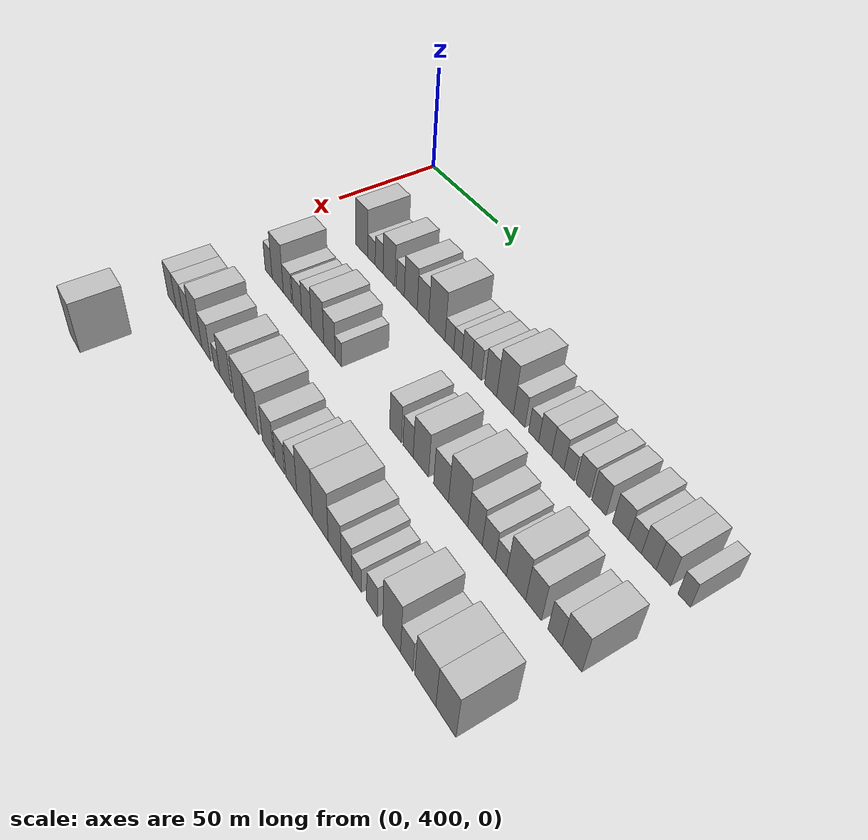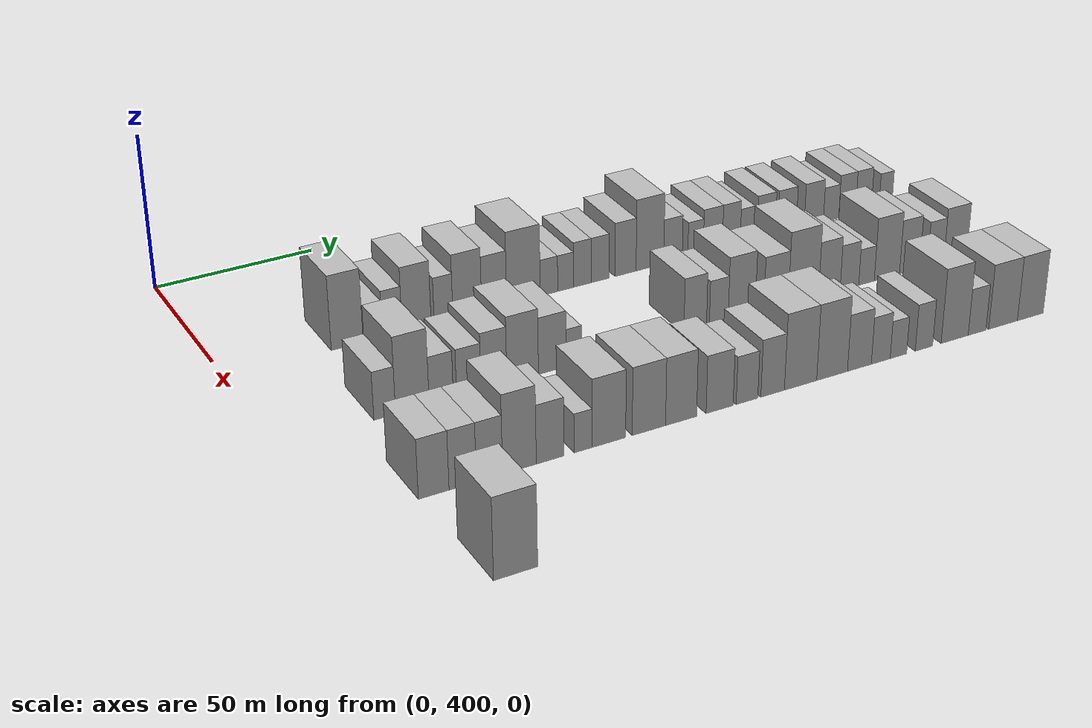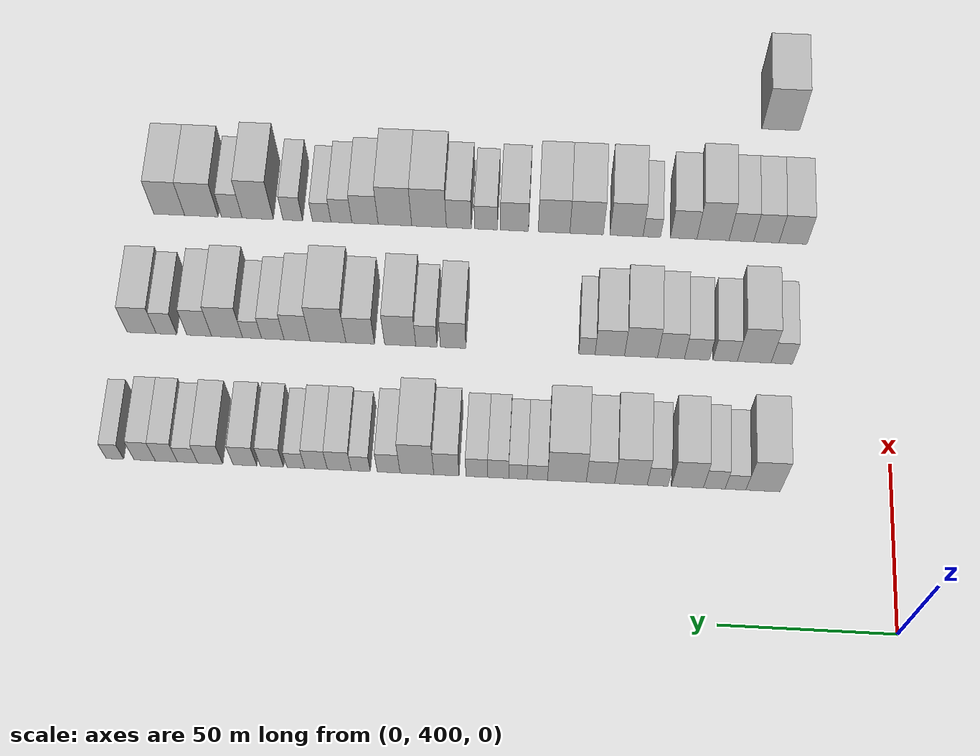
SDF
<sdf version="1.6">
 <world name="default">
  <model name="building_113">
   <static>1</static>
   <pose>50.0000 436.8785 0 0.000000 0.000000 0.000000</pose>
   <link name="link">
    <pose>0 0 12.00 0 0 0</pose>
    <collision name="collision"><geometry><box><size>20.0000 9.8470 24.0000</size></box></geometry></collision>
    <visual name="visual">
     <cast_shadows>0</cast_shadows>
     <geometry><box><size>20.0000 9.8470 24.0000</size></box></geometry>
     <material>
      <script>
       <uri>model://HANNAS_wall/materials/scripts</uri>
       <uri>model://HANNAS_wall/materials/textures</uri>
       <name>vrc/HANNAS_wall</name>
      </script>
     </material>
    </visual>
   </link>
  </model>
  <model name="building_114">
   <static>1</static>
   <pose>50.0000 444.7926 0 0.000000 0.000000 0.000000</pose>
   <link name="link">
    <pose>0 0 6.00 0 0 0</pose>
    <collision name="collision"><geometry><box><size>20.0000 5.9811 12.0000</size></box></geometry></collision>
    <visual name="visual">
     <cast_shadows>0</cast_shadows>
     <geometry><box><size>20.0000 5.9811 12.0000</size></box></geometry>
     <material>
      <script>
       <uri>model://HANNAS_wall/materials/scripts</uri>
       <uri>model://HANNAS_wall/materials/textures</uri>
       <name>vrc/HANNAS_wall</name>
      </script>
     </material>
    </visual>
   </link>
  </model>
  <model name="building_115">
   <static>1</static>
   <pose>50.0000 450.8944 0 0.000000 0.000000 0.000000</pose>
   <link name="link">
    <pose>0 0 7.50 0 0 0</pose>
    <collision name="collision"><geometry><box><size>20.0000 6.2225 15.0000</size></box></geometry></collision>
    <visual name="visual">
     <cast_shadows>0</cast_shadows>
     <geometry><box><size>20.0000 6.2225 15.0000</size></box></geometry>
     <material>
      <script>
       <uri>model://HANNAS_wall/materials/scripts</uri>
       <uri>model://HANNAS_wall/materials/textures</uri>
       <name>vrc/HANNAS_wall</name>
      </script>
     </material>
    </visual>
   </link>
  </model>
  <model name="building_116">
   <static>1</static>
   <pose>50.0000 458.5940 0 0.000000 0.000000 0.000000</pose>
   <link name="link">
    <pose>0 0 10.50 0 0 0</pose>
    <collision name="collision"><geometry><box><size>20.0000 9.1767 21.0000</size></box></geometry></collision>
    <visual name="visual">
     <cast_shadows>0</cast_shadows>
     <geometry><box><size>20.0000 9.1767 21.0000</size></box></geometry>
     <material>
      <script>
       <uri>model://HANNAS_wall/materials/scripts</uri>
       <uri>model://HANNAS_wall/materials/textures</uri>
       <name>vrc/HANNAS_wall</name>
      </script>
     </material>
    </visual>
   </link>
  </model>
  <model name="building_117">
   <static>1</static>
   <pose>50.0000 467.1879 0 0.000000 0.000000 0.000000</pose>
   <link name="link">
    <pose>0 0 7.50 0 0 0</pose>
    <collision name="collision"><geometry><box><size>20.0000 6.0111 15.0000</size></box></geometry></collision>
    <visual name="visual">
     <cast_shadows>0</cast_shadows>
     <geometry><box><size>20.0000 6.0111 15.0000</size></box></geometry>
     <material>
      <script>
       <uri>model://HANNAS_wall/materials/scripts</uri>
       <uri>model://HANNAS_wall/materials/textures</uri>
       <name>vrc/HANNAS_wall</name>
      </script>
     </material>
    </visual>
   </link>
  </model>
  <model name="building_118">
   <static>1</static>
   <pose>50.0000 474.8683 0 0.000000 0.000000 0.000000</pose>
   <link name="link">
    <pose>0 0 10.50 0 0 0</pose>
    <collision name="collision"><geometry><box><size>20.0000 9.3498 21.0000</size></box></geometry></collision>
    <visual name="visual">
     <cast_shadows>0</cast_shadows>
     <geometry><box><size>20.0000 9.3498 21.0000</size></box></geometry>
     <material>
      <script>
       <uri>model://HANNAS_wall/materials/scripts</uri>
       <uri>model://HANNAS_wall/materials/textures</uri>
       <name>vrc/HANNAS_wall</name>
      </script>
     </material>
    </visual>
   </link>
  </model>
  <model name="building_119">
   <static>1</static>
   <pose>50.0000 483.6323 0 0.000000 0.000000 0.000000</pose>
   <link name="link">
    <pose>0 0 9.00 0 0 0</pose>
    <collision name="collision"><geometry><box><size>20.0000 8.1782 18.0000</size></box></geometry></collision>
    <visual name="visual">
     <cast_shadows>0</cast_shadows>
     <geometry><box><size>20.0000 8.1782 18.0000</size></box></geometry>
     <material>
      <script>
       <uri>model://HANNAS_wall/materials/scripts</uri>
       <uri>model://HANNAS_wall/materials/textures</uri>
       <name>vrc/HANNAS_wall</name>
      </script>
     </material>
    </visual>
   </link>
  </model>
  <model name="building_120">
   <static>1</static>
   <pose>50.0000 493.3084 0 0.000000 0.000000 0.000000</pose>
   <link name="link">
    <pose>0 0 12.00 0 0 0</pose>
    <collision name="collision"><geometry><box><size>20.0000 11.1739 24.0000</size></box></geometry></collision>
    <visual name="visual">
     <cast_shadows>0</cast_shadows>
     <geometry><box><size>20.0000 11.1739 24.0000</size></box></geometry>
     <material>
      <script>
       <uri>model://HANNAS_wall/materials/scripts</uri>
       <uri>model://HANNAS_wall/materials/textures</uri>
       <name>vrc/HANNAS_wall</name>
      </script>
     </material>
    </visual>
   </link>
  </model>
  <model name="building_121">
   <static>1</static>
   <pose>50.0000 501.8334 0 0.000000 0.000000 0.000000</pose>
   <link name="link">
    <pose>0 0 6.00 0 0 0</pose>
    <collision name="collision"><geometry><box><size>20.0000 5.8761 12.0000</size></box></geometry></collision>
    <visual name="visual">
     <cast_shadows>0</cast_shadows>
     <geometry><box><size>20.0000 5.8761 12.0000</size></box></geometry>
     <material>
      <script>
       <uri>model://HANNAS_wall/materials/scripts</uri>
       <uri>model://HANNAS_wall/materials/textures</uri>
       <name>vrc/HANNAS_wall</name>
      </script>
     </material>
    </visual>
   </link>
  </model>
  <model name="building_122">
   <static>1</static>
   <pose>50.0000 507.4284 0 0.000000 0.000000 0.000000</pose>
   <link name="link">
    <pose>0 0 6.00 0 0 0</pose>
    <collision name="collision"><geometry><box><size>20.0000 5.3139 12.0000</size></box></geometry></collision>
    <visual name="visual">
     <cast_shadows>0</cast_shadows>
     <geometry><box><size>20.0000 5.3139 12.0000</size></box></geometry>
     <material>
      <script>
       <uri>model://HANNAS_wall/materials/scripts</uri>
       <uri>model://HANNAS_wall/materials/textures</uri>
       <name>vrc/HANNAS_wall</name>
      </script>
     </material>
    </visual>
   </link>
  </model>
  <model name="building_123">
   <static>1</static>
   <pose>50.0000 513.1007 0 0.000000 0.000000 0.000000</pose>
   <link name="link">
    <pose>0 0 7.50 0 0 0</pose>
    <collision name="collision"><geometry><box><size>20.0000 6.0308 15.0000</size></box></geometry></collision>
    <visual name="visual">
     <cast_shadows>0</cast_shadows>
     <geometry><box><size>20.0000 6.0308 15.0000</size></box></geometry>
     <material>
      <script>
       <uri>model://HANNAS_wall/materials/scripts</uri>
       <uri>model://HANNAS_wall/materials/textures</uri>
       <name>vrc/HANNAS_wall</name>
      </script>
     </material>
    </visual>
   </link>
  </model>
  <model name="building_124">
   <static>1</static>
   <pose>50.0000 519.2578 0 0.000000 0.000000 0.000000</pose>
   <link name="link">
    <pose>0 0 7.50 0 0 0</pose>
    <collision name="collision"><geometry><box><size>20.0000 6.2834 15.0000</size></box></geometry></collision>
    <visual name="visual">
     <cast_shadows>0</cast_shadows>
     <geometry><box><size>20.0000 6.2834 15.0000</size></box></geometry>
     <material>
      <script>
       <uri>model://HANNAS_wall/materials/scripts</uri>
       <uri>model://HANNAS_wall/materials/textures</uri>
       <name>vrc/HANNAS_wall</name>
      </script>
     </material>
    </visual>
   </link>
  </model>
  <model name="building_125">
   <static>1</static>
   <pose>50.0000 528.0510 0 0.000000 0.000000 0.000000</pose>
   <link name="link">
    <pose>0 0 9.00 0 0 0</pose>
    <collision name="collision"><geometry><box><size>20.0000 7.3029 18.0000</size></box></geometry></collision>
    <visual name="visual">
     <cast_shadows>0</cast_shadows>
     <geometry><box><size>20.0000 7.3029 18.0000</size></box></geometry>
     <material>
      <script>
       <uri>model://HANNAS_wall/materials/scripts</uri>
       <uri>model://HANNAS_wall/materials/textures</uri>
       <name>vrc/HANNAS_wall</name>
      </script>
     </material>
    </visual>
   </link>
  </model>
  <model name="building_126">
   <static>1</static>
   <pose>50.0000 536.5719 0 0.000000 0.000000 0.000000</pose>
   <link name="link">
    <pose>0 0 12.00 0 0 0</pose>
    <collision name="collision"><geometry><box><size>20.0000 9.7388 24.0000</size></box></geometry></collision>
    <visual name="visual">
     <cast_shadows>0</cast_shadows>
     <geometry><box><size>20.0000 9.7388 24.0000</size></box></geometry>
     <material>
      <script>
       <uri>model://HANNAS_wall/materials/scripts</uri>
       <uri>model://HANNAS_wall/materials/textures</uri>
       <name>vrc/HANNAS_wall</name>
      </script>
     </material>
    </visual>
   </link>
  </model>
  <model name="building_127">
   <static>1</static>
   <pose>50.0000 544.7334 0 0.000000 0.000000 0.000000</pose>
   <link name="link">
    <pose>0 0 7.50 0 0 0</pose>
    <collision name="collision"><geometry><box><size>20.0000 6.5842 15.0000</size></box></geometry></collision>
    <visual name="visual">
     <cast_shadows>0</cast_shadows>
     <geometry><box><size>20.0000 6.5842 15.0000</size></box></geometry>
     <material>
      <script>
       <uri>model://HANNAS_wall/materials/scripts</uri>
       <uri>model://HANNAS_wall/materials/textures</uri>
       <name>vrc/HANNAS_wall</name>
      </script>
     </material>
    </visual>
   </link>
  </model>
  <model name="building_128">
   <static>1</static>
   <pose>50.0000 552.7951 0 0.000000 0.000000 0.000000</pose>
   <link name="link">
    <pose>0 0 6.00 0 0 0</pose>
    <collision name="collision"><geometry><box><size>20.0000 5.5393 12.0000</size></box></geometry></collision>
    <visual name="visual">
     <cast_shadows>0</cast_shadows>
     <geometry><box><size>20.0000 5.5393 12.0000</size></box></geometry>
     <material>
      <script>
       <uri>model://HANNAS_wall/materials/scripts</uri>
       <uri>model://HANNAS_wall/materials/textures</uri>
       <name>vrc/HANNAS_wall</name>
      </script>
     </material>
    </visual>
   </link>
  </model>
  <model name="building_129">
   <static>1</static>
   <pose>50.0000 559.0308 0 0.000000 0.000000 0.000000</pose>
   <link name="link">
    <pose>0 0 7.50 0 0 0</pose>
    <collision name="collision"><geometry><box><size>20.0000 6.9321 15.0000</size></box></geometry></collision>
    <visual name="visual">
     <cast_shadows>0</cast_shadows>
     <geometry><box><size>20.0000 6.9321 15.0000</size></box></geometry>
     <material>
      <script>
       <uri>model://HANNAS_wall/materials/scripts</uri>
       <uri>model://HANNAS_wall/materials/textures</uri>
       <name>vrc/HANNAS_wall</name>
      </script>
     </material>
    </visual>
   </link>
  </model>
  <model name="building_130">
   <static>1</static>
   <pose>50.0000 565.7573 0 0.000000 0.000000 0.000000</pose>
   <link name="link">
    <pose>0 0 7.50 0 0 0</pose>
    <collision name="collision"><geometry><box><size>20.0000 6.5210 15.0000</size></box></geometry></collision>
    <visual name="visual">
     <cast_shadows>0</cast_shadows>
     <geometry><box><size>20.0000 6.5210 15.0000</size></box></geometry>
     <material>
      <script>
       <uri>model://HANNAS_wall/materials/scripts</uri>
       <uri>model://HANNAS_wall/materials/textures</uri>
       <name>vrc/HANNAS_wall</name>
      </script>
     </material>
    </visual>
   </link>
  </model>
  <model name="building_131">
   <static>1</static>
   <pose>50.0000 571.6080 0 0.000000 0.000000 0.000000</pose>
   <link name="link">
    <pose>0 0 6.00 0 0 0</pose>
    <collision name="collision"><geometry><box><size>20.0000 5.1803 12.0000</size></box></geometry></collision>
    <visual name="visual">
     <cast_shadows>0</cast_shadows>
     <geometry><box><size>20.0000 5.1803 12.0000</size></box></geometry>
     <material>
      <script>
       <uri>model://HANNAS_wall/materials/scripts</uri>
       <uri>model://HANNAS_wall/materials/textures</uri>
       <name>vrc/HANNAS_wall</name>
      </script>
     </material>
    </visual>
   </link>
  </model>
  <model name="building_132">
   <static>1</static>
   <pose>50.0000 578.5764 0 0.000000 0.000000 0.000000</pose>
   <link name="link">
    <pose>0 0 7.50 0 0 0</pose>
    <collision name="collision"><geometry><box><size>20.0000 6.7565 15.0000</size></box></geometry></collision>
    <visual name="visual">
     <cast_shadows>0</cast_shadows>
     <geometry><box><size>20.0000 6.7565 15.0000</size></box></geometry>
     <material>
      <script>
       <uri>model://HANNAS_wall/materials/scripts</uri>
       <uri>model://HANNAS_wall/materials/textures</uri>
       <name>vrc/HANNAS_wall</name>
      </script>
     </material>
    </visual>
   </link>
  </model>
  <model name="building_133">
   <static>1</static>
   <pose>50.0000 586.4103 0 0.000000 0.000000 0.000000</pose>
   <link name="link">
    <pose>0 0 7.50 0 0 0</pose>
    <collision name="collision"><geometry><box><size>20.0000 6.9113 15.0000</size></box></geometry></collision>
    <visual name="visual">
     <cast_shadows>0</cast_shadows>
     <geometry><box><size>20.0000 6.9113 15.0000</size></box></geometry>
     <material>
      <script>
       <uri>model://HANNAS_wall/materials/scripts</uri>
       <uri>model://HANNAS_wall/materials/textures</uri>
       <name>vrc/HANNAS_wall</name>
      </script>
     </material>
    </visual>
   </link>
  </model>
  <model name="building_134">
   <static>1</static>
   <pose>50.0000 596.5261 0 0.000000 0.000000 0.000000</pose>
   <link name="link">
    <pose>0 0 7.50 0 0 0</pose>
    <collision name="collision"><geometry><box><size>20.0000 7.3204 15.0000</size></box></geometry></collision>
    <visual name="visual">
     <cast_shadows>0</cast_shadows>
     <geometry><box><size>20.0000 7.3204 15.0000</size></box></geometry>
     <material>
      <script>
       <uri>model://HANNAS_wall/materials/scripts</uri>
       <uri>model://HANNAS_wall/materials/textures</uri>
       <name>vrc/HANNAS_wall</name>
      </script>
     </material>
    </visual>
   </link>
  </model>
  <model name="building_135">
   <static>1</static>
   <pose>50.0000 603.1235 0 0.000000 0.000000 0.000000</pose>
   <link name="link">
    <pose>0 0 6.00 0 0 0</pose>
    <collision name="collision"><geometry><box><size>20.0000 5.8744 12.0000</size></box></geometry></collision>
    <visual name="visual">
     <cast_shadows>0</cast_shadows>
     <geometry><box><size>20.0000 5.8744 12.0000</size></box></geometry>
     <material>
      <script>
       <uri>model://HANNAS_wall/materials/scripts</uri>
       <uri>model://HANNAS_wall/materials/textures</uri>
       <name>vrc/HANNAS_wall</name>
      </script>
     </material>
    </visual>
   </link>
  </model>
  <model name="building_136">
   <static>1</static>
   <pose>50.0000 609.2838 0 0.000000 0.000000 0.000000</pose>
   <link name="link">
    <pose>0 0 7.50 0 0 0</pose>
    <collision name="collision"><geometry><box><size>20.0000 6.4463 15.0000</size></box></geometry></collision>
    <visual name="visual">
     <cast_shadows>0</cast_shadows>
     <geometry><box><size>20.0000 6.4463 15.0000</size></box></geometry>
     <material>
      <script>
       <uri>model://HANNAS_wall/materials/scripts</uri>
       <uri>model://HANNAS_wall/materials/textures</uri>
       <name>vrc/HANNAS_wall</name>
      </script>
     </material>
    </visual>
   </link>
  </model>
  <model name="building_137">
   <static>1</static>
   <pose>50.0000 615.5949 0 0.000000 0.000000 0.000000</pose>
   <link name="link">
    <pose>0 0 7.50 0 0 0</pose>
    <collision name="collision"><geometry><box><size>20.0000 6.1759 15.0000</size></box></geometry></collision>
    <visual name="visual">
     <cast_shadows>0</cast_shadows>
     <geometry><box><size>20.0000 6.1759 15.0000</size></box></geometry>
     <material>
      <script>
       <uri>model://HANNAS_wall/materials/scripts</uri>
       <uri>model://HANNAS_wall/materials/textures</uri>
       <name>vrc/HANNAS_wall</name>
      </script>
     </material>
    </visual>
   </link>
  </model>
  <model name="building_138">
   <static>1</static>
   <pose>50.0000 624.2510 0 0.000000 0.000000 0.000000</pose>
   <link name="link">
    <pose>0 0 6.00 0 0 0</pose>
    <collision name="collision"><geometry><box><size>20.0000 5.1363 12.0000</size></box></geometry></collision>
    <visual name="visual">
     <cast_shadows>0</cast_shadows>
     <geometry><box><size>20.0000 5.1363 12.0000</size></box></geometry>
     <material>
      <script>
       <uri>model://HANNAS_wall/materials/scripts</uri>
       <uri>model://HANNAS_wall/materials/textures</uri>
       <name>vrc/HANNAS_wall</name>
      </script>
     </material>
    </visual>
   </link>
  </model>
  <model name="building_253">
   <static>1</static>
   <pose>90.0000 430.9572 0 0.000000 0.000000 0.000000</pose>
   <link name="link">
    <pose>0 0 7.50 0 0 0</pose>
    <collision name="collision"><geometry><box><size>20.0000 6.3810 15.0000</size></box></geometry></collision>
    <visual name="visual">
     <cast_shadows>0</cast_shadows>
     <geometry><box><size>20.0000 6.3810 15.0000</size></box></geometry>
     <material>
      <script>
       <uri>model://HANNAS_wall/materials/scripts</uri>
       <uri>model://HANNAS_wall/materials/textures</uri>
       <name>vrc/HANNAS_wall</name>
      </script>
     </material>
    </visual>
   </link>
  </model>
  <model name="building_254">
   <static>1</static>
   <pose>90.0000 439.1356 0 0.000000 0.000000 0.000000</pose>
   <link name="link">
    <pose>0 0 12.00 0 0 0</pose>
    <collision name="collision"><geometry><box><size>20.0000 9.9757 24.0000</size></box></geometry></collision>
    <visual name="visual">
     <cast_shadows>0</cast_shadows>
     <geometry><box><size>20.0000 9.9757 24.0000</size></box></geometry>
     <material>
      <script>
       <uri>model://HANNAS_wall/materials/scripts</uri>
       <uri>model://HANNAS_wall/materials/textures</uri>
       <name>vrc/HANNAS_wall</name>
      </script>
     </material>
    </visual>
   </link>
  </model>
  <model name="building_255">
   <static>1</static>
   <pose>90.0000 447.7504 0 0.000000 0.000000 0.000000</pose>
   <link name="link">
    <pose>0 0 7.50 0 0 0</pose>
    <collision name="collision"><geometry><box><size>20.0000 7.2540 15.0000</size></box></geometry></collision>
    <visual name="visual">
     <cast_shadows>0</cast_shadows>
     <geometry><box><size>20.0000 7.2540 15.0000</size></box></geometry>
     <material>
      <script>
       <uri>model://HANNAS_wall/materials/scripts</uri>
       <uri>model://HANNAS_wall/materials/textures</uri>
       <name>vrc/HANNAS_wall</name>
      </script>
     </material>
    </visual>
   </link>
  </model>
  <model name="building_256">
   <static>1</static>
   <pose>90.0000 456.0979 0 0.000000 0.000000 0.000000</pose>
   <link name="link">
    <pose>0 0 7.50 0 0 0</pose>
    <collision name="collision"><geometry><box><size>20.0000 7.4410 15.0000</size></box></geometry></collision>
    <visual name="visual">
     <cast_shadows>0</cast_shadows>
     <geometry><box><size>20.0000 7.4410 15.0000</size></box></geometry>
     <material>
      <script>
       <uri>model://HANNAS_wall/materials/scripts</uri>
       <uri>model://HANNAS_wall/materials/textures</uri>
       <name>vrc/HANNAS_wall</name>
      </script>
     </material>
    </visual>
   </link>
  </model>
  <model name="building_257">
   <static>1</static>
   <pose>90.0000 463.7960 0 0.000000 0.000000 0.000000</pose>
   <link name="link">
    <pose>0 0 9.00 0 0 0</pose>
    <collision name="collision"><geometry><box><size>20.0000 7.9552 18.0000</size></box></geometry></collision>
    <visual name="visual">
     <cast_shadows>0</cast_shadows>
     <geometry><box><size>20.0000 7.9552 18.0000</size></box></geometry>
     <material>
      <script>
       <uri>model://HANNAS_wall/materials/scripts</uri>
       <uri>model://HANNAS_wall/materials/textures</uri>
       <name>vrc/HANNAS_wall</name>
      </script>
     </material>
    </visual>
   </link>
  </model>
  <model name="building_258">
   <static>1</static>
   <pose>90.0000 472.6926 0 0.000000 0.000000 0.000000</pose>
   <link name="link">
    <pose>0 0 10.50 0 0 0</pose>
    <collision name="collision"><geometry><box><size>20.0000 9.8380 21.0000</size></box></geometry></collision>
    <visual name="visual">
     <cast_shadows>0</cast_shadows>
     <geometry><box><size>20.0000 9.8380 21.0000</size></box></geometry>
     <material>
      <script>
       <uri>model://HANNAS_wall/materials/scripts</uri>
       <uri>model://HANNAS_wall/materials/textures</uri>
       <name>vrc/HANNAS_wall</name>
      </script>
     </material>
    </visual>
   </link>
  </model>
  <model name="building_259">
   <static>1</static>
   <pose>90.0000 481.9877 0 0.000000 0.000000 0.000000</pose>
   <link name="link">
    <pose>0 0 9.00 0 0 0</pose>
    <collision name="collision"><geometry><box><size>20.0000 8.7523 18.0000</size></box></geometry></collision>
    <visual name="visual">
     <cast_shadows>0</cast_shadows>
     <geometry><box><size>20.0000 8.7523 18.0000</size></box></geometry>
     <material>
      <script>
       <uri>model://HANNAS_wall/materials/scripts</uri>
       <uri>model://HANNAS_wall/materials/textures</uri>
       <name>vrc/HANNAS_wall</name>
      </script>
     </material>
    </visual>
   </link>
  </model>
  <model name="building_260">
   <static>1</static>
   <pose>90.0000 488.7991 0 0.000000 0.000000 0.000000</pose>
   <link name="link">
    <pose>0 0 6.00 0 0 0</pose>
    <collision name="collision"><geometry><box><size>20.0000 4.8704 12.0000</size></box></geometry></collision>
    <visual name="visual">
     <cast_shadows>0</cast_shadows>
     <geometry><box><size>20.0000 4.8704 12.0000</size></box></geometry>
     <material>
      <script>
       <uri>model://HANNAS_wall/materials/scripts</uri>
       <uri>model://HANNAS_wall/materials/textures</uri>
       <name>vrc/HANNAS_wall</name>
      </script>
     </material>
    </visual>
   </link>
  </model>
  <model name="building_261">
   <static>1</static>
   <pose>90.0000 528.6045 0 0.000000 0.000000 0.000000</pose>
   <link name="link">
    <pose>0 0 9.00 0 0 0</pose>
    <collision name="collision"><geometry><box><size>20.0000 7.5801 18.0000</size></box></geometry></collision>
    <visual name="visual">
     <cast_shadows>0</cast_shadows>
     <geometry><box><size>20.0000 7.5801 18.0000</size></box></geometry>
     <material>
      <script>
       <uri>model://HANNAS_wall/materials/scripts</uri>
       <uri>model://HANNAS_wall/materials/textures</uri>
       <name>vrc/HANNAS_wall</name>
      </script>
     </material>
    </visual>
   </link>
  </model>
  <model name="building_262">
   <static>1</static>
   <pose>90.0000 536.5821 0 0.000000 0.000000 0.000000</pose>
   <link name="link">
    <pose>0 0 7.50 0 0 0</pose>
    <collision name="collision"><geometry><box><size>20.0000 6.3751 15.0000</size></box></geometry></collision>
    <visual name="visual">
     <cast_shadows>0</cast_shadows>
     <geometry><box><size>20.0000 6.3751 15.0000</size></box></geometry>
     <material>
      <script>
       <uri>model://HANNAS_wall/materials/scripts</uri>
       <uri>model://HANNAS_wall/materials/textures</uri>
       <name>vrc/HANNAS_wall</name>
      </script>
     </material>
    </visual>
   </link>
  </model>
  <model name="building_263">
   <static>1</static>
   <pose>90.0000 544.4234 0 0.000000 0.000000 0.000000</pose>
   <link name="link">
    <pose>0 0 10.50 0 0 0</pose>
    <collision name="collision"><geometry><box><size>20.0000 9.3075 21.0000</size></box></geometry></collision>
    <visual name="visual">
     <cast_shadows>0</cast_shadows>
     <geometry><box><size>20.0000 9.3075 21.0000</size></box></geometry>
     <material>
      <script>
       <uri>model://HANNAS_wall/materials/scripts</uri>
       <uri>model://HANNAS_wall/materials/textures</uri>
       <name>vrc/HANNAS_wall</name>
      </script>
     </material>
    </visual>
   </link>
  </model>
  <model name="building_264">
   <static>1</static>
   <pose>90.0000 556.3689 0 0.000000 0.000000 0.000000</pose>
   <link name="link">
    <pose>0 0 9.00 0 0 0</pose>
    <collision name="collision"><geometry><box><size>20.0000 8.5836 18.0000</size></box></geometry></collision>
    <visual name="visual">
     <cast_shadows>0</cast_shadows>
     <geometry><box><size>20.0000 8.5836 18.0000</size></box></geometry>
     <material>
      <script>
       <uri>model://HANNAS_wall/materials/scripts</uri>
       <uri>model://HANNAS_wall/materials/textures</uri>
       <name>vrc/HANNAS_wall</name>
      </script>
     </material>
    </visual>
   </link>
  </model>
  <model name="building_265">
   <static>1</static>
   <pose>90.0000 566.0372 0 0.000000 0.000000 0.000000</pose>
   <link name="link">
    <pose>0 0 12.00 0 0 0</pose>
    <collision name="collision"><geometry><box><size>20.0000 10.7529 24.0000</size></box></geometry></collision>
    <visual name="visual">
     <cast_shadows>0</cast_shadows>
     <geometry><box><size>20.0000 10.7529 24.0000</size></box></geometry>
     <material>
      <script>
       <uri>model://HANNAS_wall/materials/scripts</uri>
       <uri>model://HANNAS_wall/materials/textures</uri>
       <name>vrc/HANNAS_wall</name>
      </script>
     </material>
    </visual>
   </link>
  </model>
  <model name="building_266">
   <static>1</static>
   <pose>90.0000 575.2850 0 0.000000 0.000000 0.000000</pose>
   <link name="link">
    <pose>0 0 9.00 0 0 0</pose>
    <collision name="collision"><geometry><box><size>20.0000 7.7428 18.0000</size></box></geometry></collision>
    <visual name="visual">
     <cast_shadows>0</cast_shadows>
     <geometry><box><size>20.0000 7.7428 18.0000</size></box></geometry>
     <material>
      <script>
       <uri>model://HANNAS_wall/materials/scripts</uri>
       <uri>model://HANNAS_wall/materials/textures</uri>
       <name>vrc/HANNAS_wall</name>
      </script>
     </material>
    </visual>
   </link>
  </model>
  <model name="building_267">
   <static>1</static>
   <pose>90.0000 582.5317 0 0.000000 0.000000 0.000000</pose>
   <link name="link">
    <pose>0 0 7.50 0 0 0</pose>
    <collision name="collision"><geometry><box><size>20.0000 6.7506 15.0000</size></box></geometry></collision>
    <visual name="visual">
     <cast_shadows>0</cast_shadows>
     <geometry><box><size>20.0000 6.7506 15.0000</size></box></geometry>
     <material>
      <script>
       <uri>model://HANNAS_wall/materials/scripts</uri>
       <uri>model://HANNAS_wall/materials/textures</uri>
       <name>vrc/HANNAS_wall</name>
      </script>
     </material>
    </visual>
   </link>
  </model>
  <model name="building_268">
   <static>1</static>
   <pose>90.0000 588.7497 0 0.000000 0.000000 0.000000</pose>
   <link name="link">
    <pose>0 0 6.00 0 0 0</pose>
    <collision name="collision"><geometry><box><size>20.0000 5.6855 12.0000</size></box></geometry></collision>
    <visual name="visual">
     <cast_shadows>0</cast_shadows>
     <geometry><box><size>20.0000 5.6855 12.0000</size></box></geometry>
     <material>
      <script>
       <uri>model://HANNAS_wall/materials/scripts</uri>
       <uri>model://HANNAS_wall/materials/textures</uri>
       <name>vrc/HANNAS_wall</name>
      </script>
     </material>
    </visual>
   </link>
  </model>
  <model name="building_269">
   <static>1</static>
   <pose>90.0000 596.2501 0 0.000000 0.000000 0.000000</pose>
   <link name="link">
    <pose>0 0 10.50 0 0 0</pose>
    <collision name="collision"><geometry><box><size>20.0000 9.3152 21.0000</size></box></geometry></collision>
    <visual name="visual">
     <cast_shadows>0</cast_shadows>
     <geometry><box><size>20.0000 9.3152 21.0000</size></box></geometry>
     <material>
      <script>
       <uri>model://HANNAS_wall/materials/scripts</uri>
       <uri>model://HANNAS_wall/materials/textures</uri>
       <name>vrc/HANNAS_wall</name>
      </script>
     </material>
    </visual>
   </link>
  </model>
  <model name="building_270">
   <static>1</static>
   <pose>90.0000 604.6306 0 0.000000 0.000000 0.000000</pose>
   <link name="link">
    <pose>0 0 9.00 0 0 0</pose>
    <collision name="collision"><geometry><box><size>20.0000 7.4460 18.0000</size></box></geometry></collision>
    <visual name="visual">
     <cast_shadows>0</cast_shadows>
     <geometry><box><size>20.0000 7.4460 18.0000</size></box></geometry>
     <material>
      <script>
       <uri>model://HANNAS_wall/materials/scripts</uri>
       <uri>model://HANNAS_wall/materials/textures</uri>
       <name>vrc/HANNAS_wall</name>
      </script>
     </material>
    </visual>
   </link>
  </model>
  <model name="building_271">
   <static>1</static>
   <pose>90.0000 614.4553 0 0.000000 0.000000 0.000000</pose>
   <link name="link">
    <pose>0 0 7.50 0 0 0</pose>
    <collision name="collision"><geometry><box><size>20.0000 6.2034 15.0000</size></box></geometry></collision>
    <visual name="visual">
     <cast_shadows>0</cast_shadows>
     <geometry><box><size>20.0000 6.2034 15.0000</size></box></geometry>
     <material>
      <script>
       <uri>model://HANNAS_wall/materials/scripts</uri>
       <uri>model://HANNAS_wall/materials/textures</uri>
       <name>vrc/HANNAS_wall</name>
      </script>
     </material>
    </visual>
   </link>
  </model>
  <model name="building_272">
   <static>1</static>
   <pose>90.0000 621.9286 0 0.000000 0.000000 0.000000</pose>
   <link name="link">
    <pose>0 0 9.00 0 0 0</pose>
    <collision name="collision"><geometry><box><size>20.0000 8.7432 18.0000</size></box></geometry></collision>
    <visual name="visual">
     <cast_shadows>0</cast_shadows>
     <geometry><box><size>20.0000 8.7432 18.0000</size></box></geometry>
     <material>
      <script>
       <uri>model://HANNAS_wall/materials/scripts</uri>
       <uri>model://HANNAS_wall/materials/textures</uri>
       <name>vrc/HANNAS_wall</name>
      </script>
     </material>
    </visual>
   </link>
  </model>
  <model name="building_392">
   <static>1</static>
   <pose>130.0000 426.9467 0 0.000000 0.000000 0.000000</pose>
   <link name="link">
    <pose>0 0 9.00 0 0 0</pose>
    <collision name="collision"><geometry><box><size>20.0000 8.5976 18.0000</size></box></geometry></collision>
    <visual name="visual">
     <cast_shadows>0</cast_shadows>
     <geometry><box><size>20.0000 8.5976 18.0000</size></box></geometry>
     <material>
      <script>
       <uri>model://HANNAS_wall/materials/scripts</uri>
       <uri>model://HANNAS_wall/materials/textures</uri>
       <name>vrc/HANNAS_wall</name>
      </script>
     </material>
    </visual>
   </link>
  </model>
  <model name="building_393">
   <static>1</static>
   <pose>130.0000 435.1160 0 0.000000 0.000000 0.000000</pose>
   <link name="link">
    <pose>0 0 9.00 0 0 0</pose>
    <collision name="collision"><geometry><box><size>20.0000 7.7410 18.0000</size></box></geometry></collision>
    <visual name="visual">
     <cast_shadows>0</cast_shadows>
     <geometry><box><size>20.0000 7.7410 18.0000</size></box></geometry>
     <material>
      <script>
       <uri>model://HANNAS_wall/materials/scripts</uri>
       <uri>model://HANNAS_wall/materials/textures</uri>
       <name>vrc/HANNAS_wall</name>
      </script>
     </material>
    </visual>
   </link>
  </model>
  <model name="building_394">
   <static>1</static>
   <pose>130.0000 442.7504 0 0.000000 0.000000 0.000000</pose>
   <link name="link">
    <pose>0 0 9.00 0 0 0</pose>
    <collision name="collision"><geometry><box><size>20.0000 7.5277 18.0000</size></box></geometry></collision>
    <visual name="visual">
     <cast_shadows>0</cast_shadows>
     <geometry><box><size>20.0000 7.5277 18.0000</size></box></geometry>
     <material>
      <script>
       <uri>model://HANNAS_wall/materials/scripts</uri>
       <uri>model://HANNAS_wall/materials/textures</uri>
       <name>vrc/HANNAS_wall</name>
      </script>
     </material>
    </visual>
   </link>
  </model>
  <model name="building_395">
   <static>1</static>
   <pose>130.0000 451.4079 0 0.000000 0.000000 0.000000</pose>
   <link name="link">
    <pose>0 0 12.00 0 0 0</pose>
    <collision name="collision"><geometry><box><size>20.0000 9.7873 24.0000</size></box></geometry></collision>
    <visual name="visual">
     <cast_shadows>0</cast_shadows>
     <geometry><box><size>20.0000 9.7873 24.0000</size></box></geometry>
     <material>
      <script>
       <uri>model://HANNAS_wall/materials/scripts</uri>
       <uri>model://HANNAS_wall/materials/textures</uri>
       <name>vrc/HANNAS_wall</name>
      </script>
     </material>
    </visual>
   </link>
  </model>
  <model name="building_396">
   <static>1</static>
   <pose>130.0000 460.3738 0 0.000000 0.000000 0.000000</pose>
   <link name="link">
    <pose>0 0 9.00 0 0 0</pose>
    <collision name="collision"><geometry><box><size>20.0000 8.1445 18.0000</size></box></geometry></collision>
    <visual name="visual">
     <cast_shadows>0</cast_shadows>
     <geometry><box><size>20.0000 8.1445 18.0000</size></box></geometry>
     <material>
      <script>
       <uri>model://HANNAS_wall/materials/scripts</uri>
       <uri>model://HANNAS_wall/materials/textures</uri>
       <name>vrc/HANNAS_wall</name>
      </script>
     </material>
    </visual>
   </link>
  </model>
  <model name="building_397">
   <static>1</static>
   <pose>130.0000 470.1311 0 0.000000 0.000000 0.000000</pose>
   <link name="link">
    <pose>0 0 6.00 0 0 0</pose>
    <collision name="collision"><geometry><box><size>20.0000 5.3700 12.0000</size></box></geometry></collision>
    <visual name="visual">
     <cast_shadows>0</cast_shadows>
     <geometry><box><size>20.0000 5.3700 12.0000</size></box></geometry>
     <material>
      <script>
       <uri>model://HANNAS_wall/materials/scripts</uri>
       <uri>model://HANNAS_wall/materials/textures</uri>
       <name>vrc/HANNAS_wall</name>
      </script>
     </material>
    </visual>
   </link>
  </model>
  <model name="building_398">
   <static>1</static>
   <pose>130.0000 477.9075 0 0.000000 0.000000 0.000000</pose>
   <link name="link">
    <pose>0 0 10.50 0 0 0</pose>
    <collision name="collision"><geometry><box><size>20.0000 10.1829 21.0000</size></box></geometry></collision>
    <visual name="visual">
     <cast_shadows>0</cast_shadows>
     <geometry><box><size>20.0000 10.1829 21.0000</size></box></geometry>
     <material>
      <script>
       <uri>model://HANNAS_wall/materials/scripts</uri>
       <uri>model://HANNAS_wall/materials/textures</uri>
       <name>vrc/HANNAS_wall</name>
      </script>
     </material>
    </visual>
   </link>
  </model>
  <model name="building_399">
   <static>1</static>
   <pose>130.0000 490.1350 0 0.000000 0.000000 0.000000</pose>
   <link name="link">
    <pose>0 0 10.50 0 0 0</pose>
    <collision name="collision"><geometry><box><size>20.0000 10.2721 21.0000</size></box></geometry></collision>
    <visual name="visual">
     <cast_shadows>0</cast_shadows>
     <geometry><box><size>20.0000 10.2721 21.0000</size></box></geometry>
     <material>
      <script>
       <uri>model://HANNAS_wall/materials/scripts</uri>
       <uri>model://HANNAS_wall/materials/textures</uri>
       <name>vrc/HANNAS_wall</name>
      </script>
     </material>
    </visual>
   </link>
  </model>
  <model name="building_400">
   <static>1</static>
   <pose>130.0000 500.1175 0 0.000000 0.000000 0.000000</pose>
   <link name="link">
    <pose>0 0 10.50 0 0 0</pose>
    <collision name="collision"><geometry><box><size>20.0000 9.6928 21.0000</size></box></geometry></collision>
    <visual name="visual">
     <cast_shadows>0</cast_shadows>
     <geometry><box><size>20.0000 9.6928 21.0000</size></box></geometry>
     <material>
      <script>
       <uri>model://HANNAS_wall/materials/scripts</uri>
       <uri>model://HANNAS_wall/materials/textures</uri>
       <name>vrc/HANNAS_wall</name>
      </script>
     </material>
    </visual>
   </link>
  </model>
  <model name="building_401">
   <static>1</static>
   <pose>130.0000 512.2630 0 0.000000 0.000000 0.000000</pose>
   <link name="link">
    <pose>0 0 9.00 0 0 0</pose>
    <collision name="collision"><geometry><box><size>20.0000 8.5983 18.0000</size></box></geometry></collision>
    <visual name="visual">
     <cast_shadows>0</cast_shadows>
     <geometry><box><size>20.0000 8.5983 18.0000</size></box></geometry>
     <material>
      <script>
       <uri>model://HANNAS_wall/materials/scripts</uri>
       <uri>model://HANNAS_wall/materials/textures</uri>
       <name>vrc/HANNAS_wall</name>
      </script>
     </material>
    </visual>
   </link>
  </model>
  <model name="building_402">
   <static>1</static>
   <pose>130.0000 521.0368 0 0.000000 0.000000 0.000000</pose>
   <link name="link">
    <pose>0 0 7.50 0 0 0</pose>
    <collision name="collision"><geometry><box><size>20.0000 6.9493 15.0000</size></box></geometry></collision>
    <visual name="visual">
     <cast_shadows>0</cast_shadows>
     <geometry><box><size>20.0000 6.9493 15.0000</size></box></geometry>
     <material>
      <script>
       <uri>model://HANNAS_wall/materials/scripts</uri>
       <uri>model://HANNAS_wall/materials/textures</uri>
       <name>vrc/HANNAS_wall</name>
      </script>
     </material>
    </visual>
   </link>
  </model>
  <model name="building_403">
   <static>1</static>
   <pose>130.0000 529.3599 0 0.000000 0.000000 0.000000</pose>
   <link name="link">
    <pose>0 0 9.00 0 0 0</pose>
    <collision name="collision"><geometry><box><size>20.0000 7.6968 18.0000</size></box></geometry></collision>
    <visual name="visual">
     <cast_shadows>0</cast_shadows>
     <geometry><box><size>20.0000 7.6968 18.0000</size></box></geometry>
     <material>
      <script>
       <uri>model://HANNAS_wall/materials/scripts</uri>
       <uri>model://HANNAS_wall/materials/textures</uri>
       <name>vrc/HANNAS_wall</name>
      </script>
     </material>
    </visual>
   </link>
  </model>
  <model name="building_404">
   <static>1</static>
   <pose>130.0000 538.5388 0 0.000000 0.000000 0.000000</pose>
   <link name="link">
    <pose>0 0 12.00 0 0 0</pose>
    <collision name="collision"><geometry><box><size>20.0000 10.6611 24.0000</size></box></geometry></collision>
    <visual name="visual">
     <cast_shadows>0</cast_shadows>
     <geometry><box><size>20.0000 10.6611 24.0000</size></box></geometry>
     <material>
      <script>
       <uri>model://HANNAS_wall/materials/scripts</uri>
       <uri>model://HANNAS_wall/materials/textures</uri>
       <name>vrc/HANNAS_wall</name>
      </script>
     </material>
    </visual>
   </link>
  </model>
  <model name="building_405">
   <static>1</static>
   <pose>130.0000 549.0339 0 0.000000 0.000000 0.000000</pose>
   <link name="link">
    <pose>0 0 12.00 0 0 0</pose>
    <collision name="collision"><geometry><box><size>20.0000 10.3292 24.0000</size></box></geometry></collision>
    <visual name="visual">
     <cast_shadows>0</cast_shadows>
     <geometry><box><size>20.0000 10.3292 24.0000</size></box></geometry>
     <material>
      <script>
       <uri>model://HANNAS_wall/materials/scripts</uri>
       <uri>model://HANNAS_wall/materials/textures</uri>
       <name>vrc/HANNAS_wall</name>
      </script>
     </material>
    </visual>
   </link>
  </model>
  <model name="building_406">
   <static>1</static>
   <pose>130.0000 558.2556 0 0.000000 0.000000 0.000000</pose>
   <link name="link">
    <pose>0 0 9.00 0 0 0</pose>
    <collision name="collision"><geometry><box><size>20.0000 8.1141 18.0000</size></box></geometry></collision>
    <visual name="visual">
     <cast_shadows>0</cast_shadows>
     <geometry><box><size>20.0000 8.1141 18.0000</size></box></geometry>
     <material>
      <script>
       <uri>model://HANNAS_wall/materials/scripts</uri>
       <uri>model://HANNAS_wall/materials/textures</uri>
       <name>vrc/HANNAS_wall</name>
      </script>
     </material>
    </visual>
   </link>
  </model>
  <model name="building_407">
   <static>1</static>
   <pose>130.0000 565.5516 0 0.000000 0.000000 0.000000</pose>
   <link name="link">
    <pose>0 0 7.50 0 0 0</pose>
    <collision name="collision"><geometry><box><size>20.0000 6.4780 15.0000</size></box></geometry></collision>
    <visual name="visual">
     <cast_shadows>0</cast_shadows>
     <geometry><box><size>20.0000 6.4780 15.0000</size></box></geometry>
     <material>
      <script>
       <uri>model://HANNAS_wall/materials/scripts</uri>
       <uri>model://HANNAS_wall/materials/textures</uri>
       <name>vrc/HANNAS_wall</name>
      </script>
     </material>
    </visual>
   </link>
  </model>
  <model name="building_408">
   <static>1</static>
   <pose>130.0000 571.6504 0 0.000000 0.000000 0.000000</pose>
   <link name="link">
    <pose>0 0 6.00 0 0 0</pose>
    <collision name="collision"><geometry><box><size>20.0000 5.7195 12.0000</size></box></geometry></collision>
    <visual name="visual">
     <cast_shadows>0</cast_shadows>
     <geometry><box><size>20.0000 5.7195 12.0000</size></box></geometry>
     <material>
      <script>
       <uri>model://HANNAS_wall/materials/scripts</uri>
       <uri>model://HANNAS_wall/materials/textures</uri>
       <name>vrc/HANNAS_wall</name>
      </script>
     </material>
    </visual>
   </link>
  </model>
  <model name="building_409">
   <static>1</static>
   <pose>130.0000 580.5504 0 0.000000 0.000000 0.000000</pose>
   <link name="link">
    <pose>0 0 7.50 0 0 0</pose>
    <collision name="collision"><geometry><box><size>20.0000 6.0806 15.0000</size></box></geometry></collision>
    <visual name="visual">
     <cast_shadows>0</cast_shadows>
     <geometry><box><size>20.0000 6.0806 15.0000</size></box></geometry>
     <material>
      <script>
       <uri>model://HANNAS_wall/materials/scripts</uri>
       <uri>model://HANNAS_wall/materials/textures</uri>
       <name>vrc/HANNAS_wall</name>
      </script>
     </material>
    </visual>
   </link>
  </model>
  <model name="building_410">
   <static>1</static>
   <pose>130.0000 591.4172 0 0.000000 0.000000 0.000000</pose>
   <link name="link">
    <pose>0 0 12.00 0 0 0</pose>
    <collision name="collision"><geometry><box><size>20.0000 9.6530 24.0000</size></box></geometry></collision>
    <visual name="visual">
     <cast_shadows>0</cast_shadows>
     <geometry><box><size>20.0000 9.6530 24.0000</size></box></geometry>
     <material>
      <script>
       <uri>model://HANNAS_wall/materials/scripts</uri>
       <uri>model://HANNAS_wall/materials/textures</uri>
       <name>vrc/HANNAS_wall</name>
      </script>
     </material>
    </visual>
   </link>
  </model>
  <model name="building_411">
   <static>1</static>
   <pose>130.0000 599.4418 0 0.000000 0.000000 0.000000</pose>
   <link name="link">
    <pose>0 0 7.50 0 0 0</pose>
    <collision name="collision"><geometry><box><size>20.0000 6.3962 15.0000</size></box></geometry></collision>
    <visual name="visual">
     <cast_shadows>0</cast_shadows>
     <geometry><box><size>20.0000 6.3962 15.0000</size></box></geometry>
     <material>
      <script>
       <uri>model://HANNAS_wall/materials/scripts</uri>
       <uri>model://HANNAS_wall/materials/textures</uri>
       <name>vrc/HANNAS_wall</name>
      </script>
     </material>
    </visual>
   </link>
  </model>
  <model name="building_412">
   <static>1</static>
   <pose>130.0000 608.8633 0 0.000000 0.000000 0.000000</pose>
   <link name="link">
    <pose>0 0 10.50 0 0 0</pose>
    <collision name="collision"><geometry><box><size>20.0000 10.4466 21.0000</size></box></geometry></collision>
    <visual name="visual">
     <cast_shadows>0</cast_shadows>
     <geometry><box><size>20.0000 10.4466 21.0000</size></box></geometry>
     <material>
      <script>
       <uri>model://HANNAS_wall/materials/scripts</uri>
       <uri>model://HANNAS_wall/materials/textures</uri>
       <name>vrc/HANNAS_wall</name>
      </script>
     </material>
    </visual>
   </link>
  </model>
  <model name="building_413">
   <static>1</static>
   <pose>130.0000 618.8623 0 0.000000 0.000000 0.000000</pose>
   <link name="link">
    <pose>0 0 10.50 0 0 0</pose>
    <collision name="collision"><geometry><box><size>20.0000 9.5514 21.0000</size></box></geometry></collision>
    <visual name="visual">
     <cast_shadows>0</cast_shadows>
     <geometry><box><size>20.0000 9.5514 21.0000</size></box></geometry>
     <material>
      <script>
       <uri>model://HANNAS_wall/materials/scripts</uri>
       <uri>model://HANNAS_wall/materials/textures</uri>
       <name>vrc/HANNAS_wall</name>
      </script>
     </material>
    </visual>
   </link>
  </model>
  <model name="building_524">
   <static>1</static>
   <pose>170.0000 430.0874 0 0.000000 0.000000 0.000000</pose>
   <link name="link">
    <pose>0 0 12.00 0 0 0</pose>
    <collision name="collision"><geometry><box><size>20.0000 11.9100 24.0000</size></box></geometry></collision>
    <visual name="visual">
     <cast_shadows>0</cast_shadows>
     <geometry><box><size>20.0000 11.9100 24.0000</size></box></geometry>
     <material>
      <script>
       <uri>model://HANNAS_wall/materials/scripts</uri>
       <uri>model://HANNAS_wall/materials/textures</uri>
       <name>vrc/HANNAS_wall</name>
      </script>
     </material>
    </visual>
   </link>
  </model>
 </world>
</sdf>
